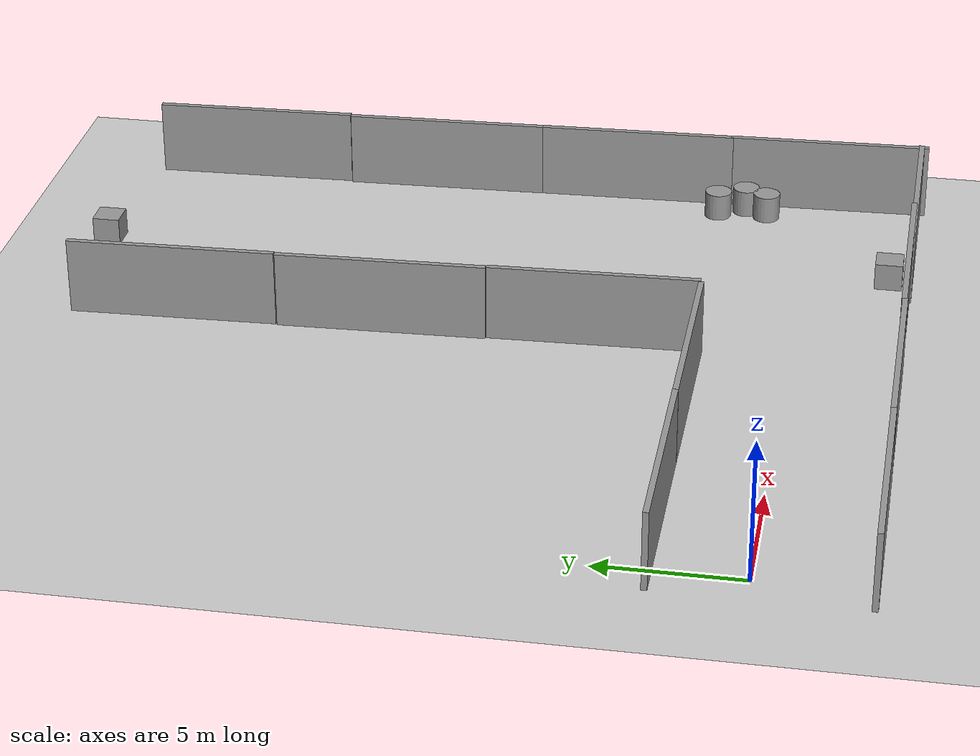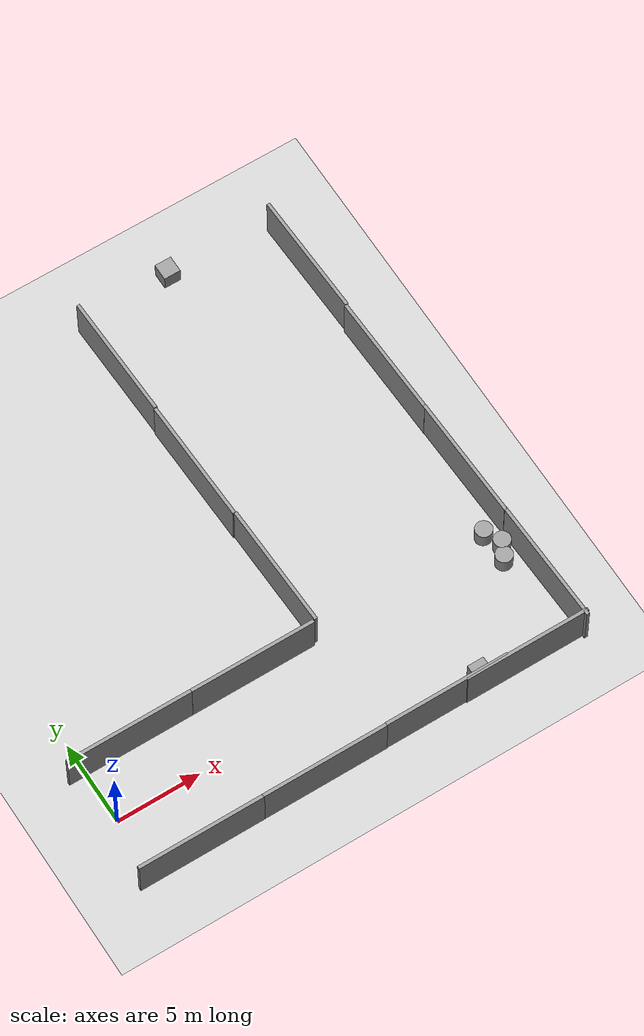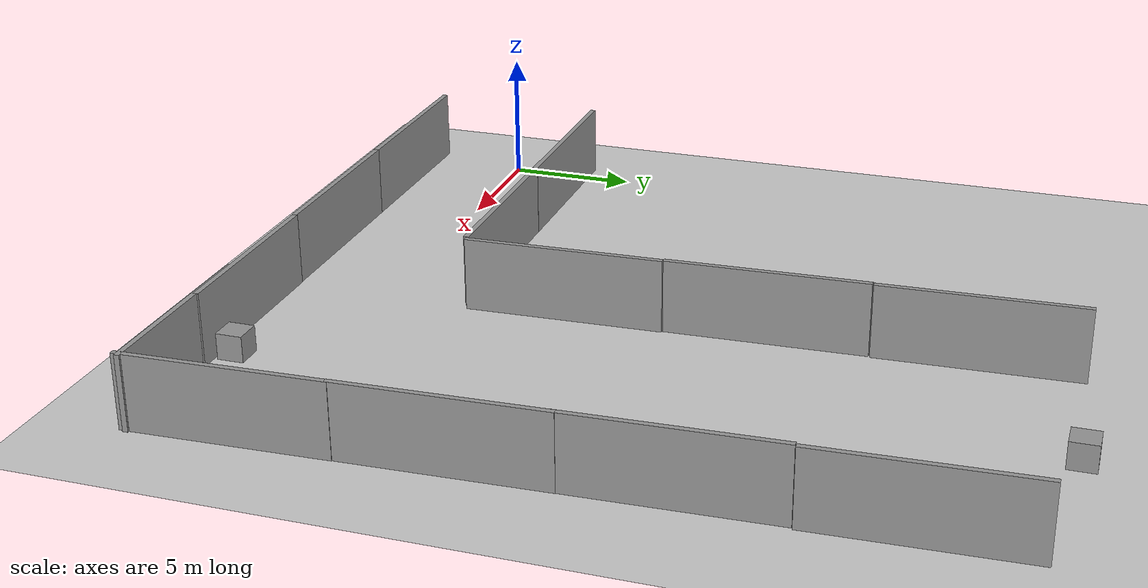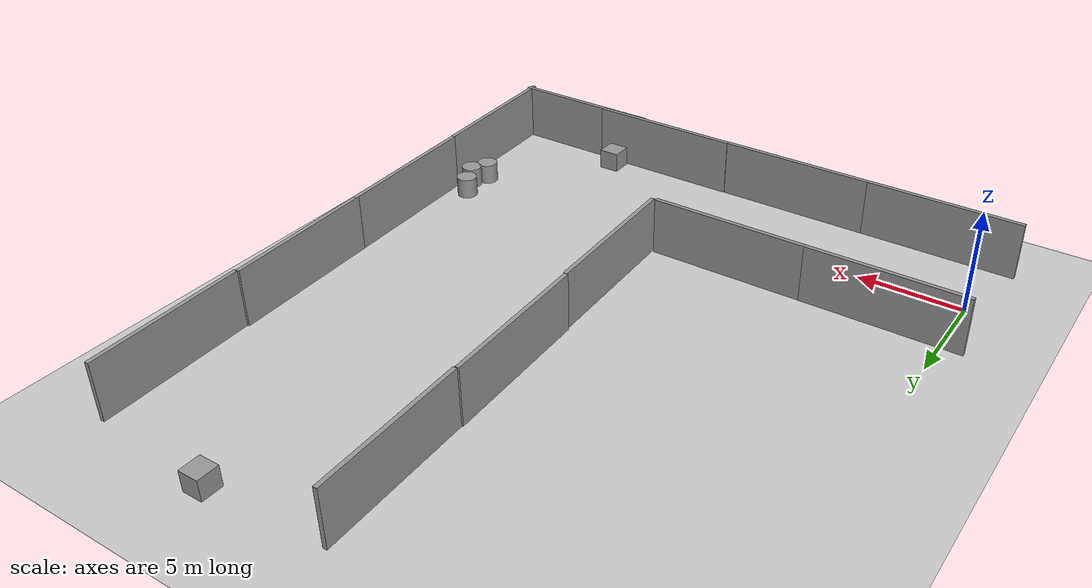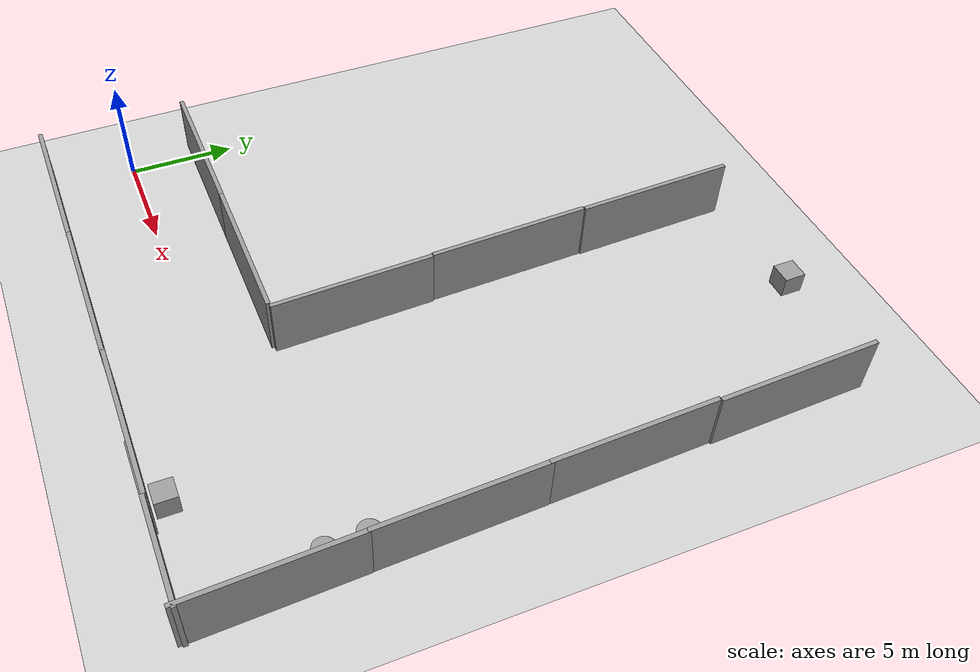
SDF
<sdf version="1.7">
 <world name="default">
  <light name="sun" type="directional">
   <pose>0 0 10 0 -0 0</pose>
   <diffuse>0.8 0.8 0.8 1</diffuse>
   <specular>0.2 0.2 0.2 1</specular>
   <attenuation>
    <range>1000</range>
    <constant>0.9</constant>
    <linear>0.01</linear>
    <quadratic>0.001</quadratic>
   </attenuation>
   <direction>-0.5 0.1 -0.9</direction>
   <spot><inner_angle>0</inner_angle><outer_angle>0</outer_angle><falloff>0</falloff></spot>
  </light>
  <model name="ground_plane">
   <static>1</static>
   <link name="link">
    <collision name="collision">
     <geometry><plane><normal>0 0 1</normal><size>100 100</size></plane></geometry>
     <surface>
      <friction>
       <ode><mu>1.0</mu><mu2>1.0</mu2><fdir1>0.9 0 0.1</fdir1><slip1>0.1</slip1><slip2>0.1</slip2></ode>
      </friction>
      <visual>
       <name>sand_visual</name>
       <cast_shadows>false</cast_shadows>
       <geometry><plane><normal>0 0 1</normal><size>100 100</size></plane></geometry>
       <material>
        <script>
         <uri>file://media/materials/scripts</uri>
         <uri>file://media/materials/textures</uri>
         <name>Gazebo/Brown</name>
        </script>
       </material>
      </visual>
      <contact>
       <ode><collide_bitmask>1</collide_bitmask><collide_without_contact>true</collide_without_contact></ode>
      </contact>
     </surface>
    </collision>
    <visual name="visual">
     <cast_shadows>0</cast_shadows>
     <geometry><plane><normal>0 0 1</normal><size>100 100</size></plane></geometry>
     <material>
      <script><uri>file://media/materials/scripts/gazebo.material</uri><name>Gazebo/Grey</name></script>
     </material>
    </visual>
   </link>
  </model>
  <gravity>0 0 -9.8</gravity>
  <magnetic_field>6e-06 2.3e-05 -4.2e-05</magnetic_field>
  <atmosphere type="adiabatic"/>
  <physics type="ode">
   <max_step_size>0.001</max_step_size>
   <real_time_factor>1</real_time_factor>
   <real_time_update_rate>1000</real_time_update_rate>
  </physics>
  <scene><ambient>0.4 0.4 0.4 1</ambient><background>0.7 0.7 0.7 1</background><shadows>1</shadows></scene>
  <audio><device>default</device></audio>
  <spherical_coordinates>
   <surface_model>EARTH_WGS84</surface_model>
   <latitude_deg>0</latitude_deg>
   <longitude_deg>0</longitude_deg>
   <elevation>0</elevation>
   <heading_deg>0</heading_deg>
  </spherical_coordinates>
  <model name="grey_wall">
   <static>1</static>
   <link name="link">
    <pose>0 0 1.4 0 -0 0</pose>
    <collision name="collision"><geometry><box><size>7.5 0.2 2.8</size></box></geometry></collision>
    <visual name="visual">
     <cast_shadows>0</cast_shadows>
     <geometry><box><size>7.5 0.2 2.8</size></box></geometry>
     <material>
      <script>
       <uri>model://grey_wall/materials/scripts</uri>
       <uri>model://grey_wall/materials/textures</uri>
       <name>vrc/grey_wall</name>
      </script>
     </material>
    </visual>
   </link>
   <pose>2.72638 3.14515 0 0 -0 0</pose>
  </model>
  <model name="grey_wall_0">
   <static>1</static>
   <link name="link">
    <pose>0 0 1.4 0 -0 0</pose>
    <collision name="collision"><geometry><box><size>7.5 0.2 2.8</size></box></geometry></collision>
    <visual name="visual">
     <cast_shadows>0</cast_shadows>
     <geometry><box><size>7.5 0.2 2.8</size></box></geometry>
     <material>
      <script>
       <uri>model://grey_wall/materials/scripts</uri>
       <uri>model://grey_wall/materials/textures</uri>
       <name>vrc/grey_wall</name>
      </script>
     </material>
    </visual>
   </link>
   <pose>10.2165 3.14219 0 0 -0 0</pose>
  </model>
  <model name="grey_wall_1">
   <static>1</static>
   <link name="link">
    <pose>0 0 1.4 0 -0 0</pose>
    <collision name="collision"><geometry><box><size>7.5 0.2 2.8</size></box></geometry></collision>
    <visual name="visual">
     <cast_shadows>0</cast_shadows>
     <geometry><box><size>7.5 0.2 2.8</size></box></geometry>
     <material>
      <script>
       <uri>model://grey_wall/materials/scripts</uri>
       <uri>model://grey_wall/materials/textures</uri>
       <name>vrc/grey_wall</name>
      </script>
     </material>
    </visual>
   </link>
   <pose>2.73862 -3.8662 0 0 -0 0</pose>
  </model>
  <model name="grey_wall_2">
   <static>1</static>
   <link name="link">
    <pose>0 0 1.4 0 -0 0</pose>
    <collision name="collision"><geometry><box><size>7.5 0.2 2.8</size></box></geometry></collision>
    <visual name="visual">
     <cast_shadows>0</cast_shadows>
     <geometry><box><size>7.5 0.2 2.8</size></box></geometry>
     <material>
      <script>
       <uri>model://grey_wall/materials/scripts</uri>
       <uri>model://grey_wall/materials/textures</uri>
       <name>vrc/grey_wall</name>
      </script>
     </material>
    </visual>
   </link>
   <pose>10.1997 -3.86088 0 0 -0 0</pose>
  </model>
  <model name="grey_wall_3">
   <static>1</static>
   <link name="link">
    <pose>0 0 1.4 0 -0 0</pose>
    <collision name="collision"><geometry><box><size>7.5 0.2 2.8</size></box></geometry></collision>
    <visual name="visual">
     <cast_shadows>0</cast_shadows>
     <geometry><box><size>7.5 0.2 2.8</size></box></geometry>
     <material>
      <script>
       <uri>model://grey_wall/materials/scripts</uri>
       <uri>model://grey_wall/materials/textures</uri>
       <name>vrc/grey_wall</name>
      </script>
     </material>
    </visual>
   </link>
   <pose>13.9886 6.91634 0 0 -0 1.60437</pose>
  </model>
  <model name="grey_wall_3_clone">
   <static>1</static>
   <link name="link">
    <pose>0 0 1.4 0 -0 0</pose>
    <collision name="collision"><geometry><box><size>7.5 0.2 2.8</size></box></geometry></collision>
    <visual name="visual">
     <cast_shadows>0</cast_shadows>
     <geometry><box><size>7.5 0.2 2.8</size></box></geometry>
     <material>
      <script>
       <uri>model://grey_wall/materials/scripts</uri>
       <uri>model://grey_wall/materials/textures</uri>
       <name>vrc/grey_wall</name>
      </script>
     </material>
    </visual>
   </link>
   <pose>17.6669 -3.83487 0 0 -0 0</pose>
  </model>
  <model name="grey_wall_3_clone_0">
   <static>1</static>
   <link name="link">
    <pose>0 0 1.4 0 -0 0</pose>
    <collision name="collision"><geometry><box><size>7.5 0.2 2.8</size></box></geometry></collision>
    <visual name="visual">
     <cast_shadows>0</cast_shadows>
     <geometry><box><size>7.5 0.2 2.8</size></box></geometry>
     <material>
      <script>
       <uri>model://grey_wall/materials/scripts</uri>
       <uri>model://grey_wall/materials/textures</uri>
       <name>vrc/grey_wall</name>
      </script>
     </material>
    </visual>
   </link>
   <pose>26.0667 -0.415613 0 0 -0 1.60437</pose>
  </model>
  <model name="grey_wall_3_clone_1">
   <static>1</static>
   <link name="link">
    <pose>0 0 1.4 0 -0 0</pose>
    <collision name="collision"><geometry><box><size>7.5 0.2 2.8</size></box></geometry></collision>
    <visual name="visual">
     <cast_shadows>0</cast_shadows>
     <geometry><box><size>7.5 0.2 2.8</size></box></geometry>
     <material>
      <script>
       <uri>model://grey_wall/materials/scripts</uri>
       <uri>model://grey_wall/materials/textures</uri>
       <name>vrc/grey_wall</name>
      </script>
     </material>
    </visual>
   </link>
   <pose>25.8006 6.9772 0 0 -0 1.60437</pose>
  </model>
  <model name="grey_wall_3_clone_2">
   <static>1</static>
   <link name="link">
    <pose>0 0 1.4 0 -0 0</pose>
    <collision name="collision"><geometry><box><size>7.5 0.2 2.8</size></box></geometry></collision>
    <visual name="visual">
     <cast_shadows>0</cast_shadows>
     <geometry><box><size>7.5 0.2 2.8</size></box></geometry>
     <material>
      <script>
       <uri>model://grey_wall/materials/scripts</uri>
       <uri>model://grey_wall/materials/textures</uri>
       <name>vrc/grey_wall</name>
      </script>
     </material>
    </visual>
   </link>
   <pose>25.5445 14.3031 0 0 -0 1.60437</pose>
  </model>
  <model name="grey_wall_3_clone_clone">
   <static>1</static>
   <link name="link">
    <pose>0 0 1.4 0 -0 0</pose>
    <collision name="collision"><geometry><box><size>7.5 0.2 2.8</size></box></geometry></collision>
    <visual name="visual">
     <cast_shadows>0</cast_shadows>
     <geometry><box><size>7.5 0.2 2.8</size></box></geometry>
     <material>
      <script>
       <uri>model://grey_wall/materials/scripts</uri>
       <uri>model://grey_wall/materials/textures</uri>
       <name>vrc/grey_wall</name>
      </script>
     </material>
    </visual>
   </link>
   <pose>22.607 -3.89241 0 0 -0 0</pose>
  </model>
  <model name="grey_wall_3_clone_3">
   <static>1</static>
   <link name="link">
    <pose>0 0 1.4 0 -0 0</pose>
    <collision name="collision"><geometry><box><size>7.5 0.2 2.8</size></box></geometry></collision>
    <visual name="visual">
     <cast_shadows>0</cast_shadows>
     <geometry><box><size>7.5 0.2 2.8</size></box></geometry>
     <material>
      <script>
       <uri>model://grey_wall/materials/scripts</uri>
       <uri>model://grey_wall/materials/textures</uri>
       <name>vrc/grey_wall</name>
      </script>
     </material>
    </visual>
   </link>
   <pose>13.6761 14.4311 0 0 -0 1.60437</pose>
  </model>
  <model name="grey_wall_3_clone_4">
   <static>1</static>
   <link name="link">
    <pose>0 0 1.4 0 -0 0</pose>
    <collision name="collision"><geometry><box><size>7.5 0.2 2.8</size></box></geometry></collision>
    <visual name="visual">
     <cast_shadows>0</cast_shadows>
     <geometry><box><size>7.5 0.2 2.8</size></box></geometry>
     <material>
      <script>
       <uri>model://grey_wall/materials/scripts</uri>
       <uri>model://grey_wall/materials/textures</uri>
       <name>vrc/grey_wall</name>
      </script>
     </material>
    </visual>
   </link>
   <pose>25.3739 21.8288 0 0 -0 1.60437</pose>
  </model>
  <model name="grey_wall_3_clone_5">
   <static>1</static>
   <link name="link">
    <pose>0 0 1.4 0 -0 0</pose>
    <collision name="collision"><geometry><box><size>7.5 0.2 2.8</size></box></geometry></collision>
    <visual name="visual">
     <cast_shadows>0</cast_shadows>
     <geometry><box><size>7.5 0.2 2.8</size></box></geometry>
     <material>
      <script>
       <uri>model://grey_wall/materials/scripts</uri>
       <uri>model://grey_wall/materials/textures</uri>
       <name>vrc/grey_wall</name>
      </script>
     </material>
    </visual>
   </link>
   <pose>13.4728 21.9715 0 0 -0 1.60437</pose>
  </model>
  <model name="unit_cylinder">
   <pose>24.9468 1.80012 0.5 0 -0 0</pose>
   <link name="link">
    <inertial>
     <mass>1</mass>
     <inertia><ixx>0.145833</ixx><ixy>0</ixy><ixz>0</ixz><iyy>0.145833</iyy><iyz>0</iyz><izz>0.125</izz></inertia>
    </inertial>
    <collision name="collision">
     <geometry><cylinder><radius>0.5</radius><length>1</length></cylinder></geometry>
    </collision>
    <visual name="visual">
     <geometry><cylinder><radius>0.5</radius><length>1</length></cylinder></geometry>
     <material>
      <script><name>Gazebo/Grey</name><uri>file://media/materials/scripts/gazebo.material</uri></script>
     </material>
    </visual>
   </link>
  </model>
  <model name="unit_cylinder_0">
   <pose>25.3469 2.60905 0.5 0 -0 0</pose>
   <link name="link">
    <inertial>
     <mass>1</mass>
     <inertia><ixx>0.145833</ixx><ixy>0</ixy><ixz>0</ixz><iyy>0.145833</iyy><iyz>0</iyz><izz>0.125</izz></inertia>
    </inertial>
    <collision name="collision">
     <geometry><cylinder><radius>0.5</radius><length>1</length></cylinder></geometry>
    </collision>
    <visual name="visual">
     <geometry><cylinder><radius>0.5</radius><length>1</length></cylinder></geometry>
     <material>
      <script><name>Gazebo/Grey</name><uri>file://media/materials/scripts/gazebo.material</uri></script>
     </material>
    </visual>
   </link>
  </model>
  <model name="unit_cylinder_1">
   <pose>24.8541 3.62865 0.5 0 -0 0</pose>
   <link name="link">
    <inertial>
     <mass>1</mass>
     <inertia><ixx>0.145833</ixx><ixy>0</ixy><ixz>0</ixz><iyy>0.145833</iyy><iyz>0</iyz><izz>0.125</izz></inertia>
    </inertial>
    <collision name="collision">
     <geometry><cylinder><radius>0.5</radius><length>1</length></cylinder></geometry>
    </collision>
    <visual name="visual">
     <geometry><cylinder><radius>0.5</radius><length>1</length></cylinder></geometry>
     <material>
      <script><name>Gazebo/Grey</name><uri>file://media/materials/scripts/gazebo.material</uri></script>
     </material>
    </visual>
   </link>
  </model>
  <model name="unit_box">
   <pose>20.2558 -3.11529 0.5 0 -0 0</pose>
   <link name="link">
    <inertial>
     <mass>1</mass>
     <inertia>
      <ixx>0.166667</ixx>
      <ixy>0</ixy>
      <ixz>0</ixz>
      <iyy>0.166667</iyy>
      <iyz>0</iyz>
      <izz>0.166667</izz>
     </inertia>
    </inertial>
    <collision name="collision"><geometry><box><size>0.999997 1 1</size></box></geometry></collision>
    <visual name="visual">
     <geometry><box><size>0.999997 1 1</size></box></geometry>
     <material>
      <script><name>Gazebo/Grey</name><uri>file://media/materials/scripts/gazebo.material</uri></script>
     </material>
    </visual>
   </link>
  </model>
  <model name="unit_box_0">
   <pose>19.0747 25.987 0.5 0 -0 0</pose>
   <link name="link">
    <inertial>
     <mass>1</mass>
     <inertia>
      <ixx>0.166667</ixx>
      <ixy>0</ixy>
      <ixz>0</ixz>
      <iyy>0.166667</iyy>
      <iyz>0</iyz>
      <izz>0.166667</izz>
     </inertia>
    </inertial>
    <collision name="collision"><geometry><box><size>0.999999 1 1</size></box></geometry></collision>
    <visual name="visual">
     <geometry><box><size>0.999999 1 1</size></box></geometry>
     <material>
      <script><name>Gazebo/Grey</name><uri>file://media/materials/scripts/gazebo.material</uri></script>
     </material>
    </visual>
   </link>
  </model>
 </world>
</sdf>
